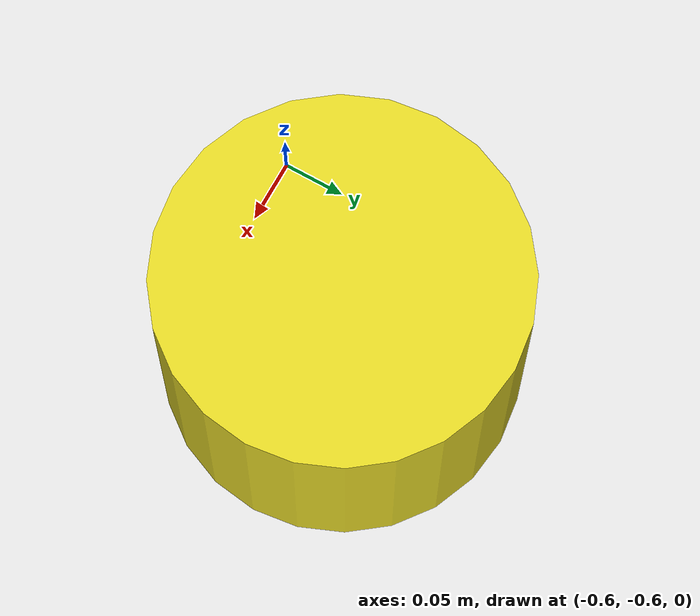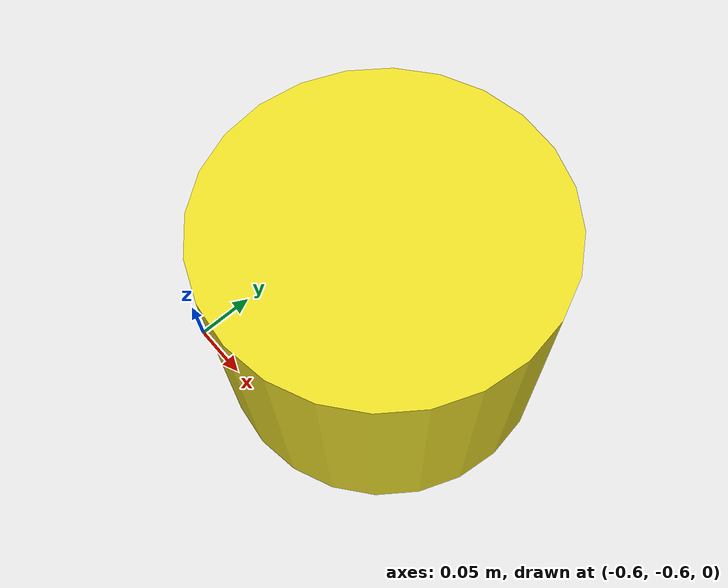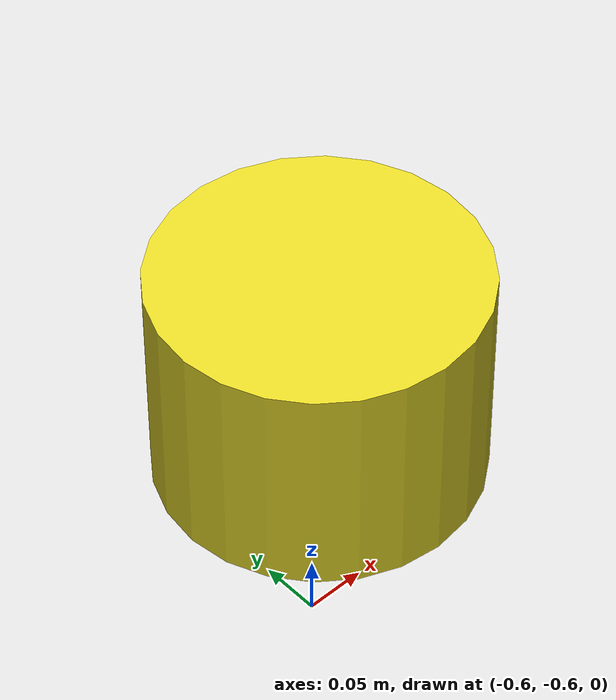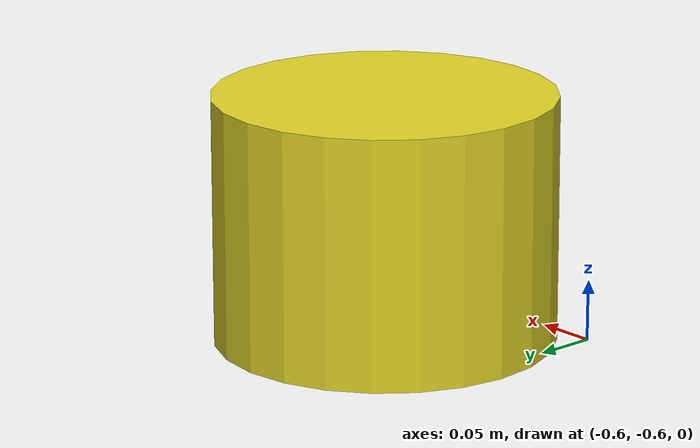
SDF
<sdf version='1.6'>

  <model name='cylinder2'>
    <pose frame=''>-0.485585 -0.485585 0.099991 0 -0 0</pose>
    <link name='link'>
      <inertial>
        <mass>0.166</mass>
        <inertia>
          <ixx>0.1</ixx>
          <ixy>0</ixy>
          <ixz>0</ixz>
          <iyy>0.1</iyy>
          <iyz>0</iyz>
          <izz>0.1</izz>
        </inertia>
        <pose frame=''>0 0 0 0 -0 0</pose>
      </inertial>
      <collision name='collision'>
        <geometry>
          <cylinder>
            <radius>0.1375</radius>
            <length>0.2</length>
          </cylinder>
        </geometry>
        <max_contacts>10</max_contacts>
        <surface>
          <contact>
            <ode/>
          </contact>
          <bounce/>
          <friction>
            <torsional>
              <ode/>
            </torsional>
            <ode/>
          </friction>
        </surface>
      </collision>
      <visual name='visual'>
        <geometry>
          <cylinder>
            <radius>0.1375</radius>
            <length>0.2</length>
          </cylinder>
        </geometry>
        <material>
          <script>
            <name>Gazebo/Yellow</name>
            <uri>file://media/materials/scripts/gazebo.material</uri>
          </script>
        </material>
      </visual>
      <self_collide>1</self_collide>
      <enable_wind>0</enable_wind>
      <kinematic>0</kinematic>
    </link>
  </model>

</sdf>
